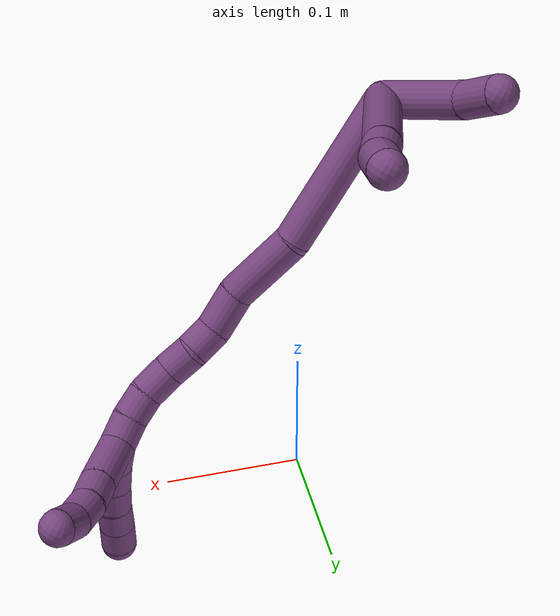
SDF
<sdf version="1.7">
 <world name="default">
  <model name="20">
   <static>0</static>
   <link name="20">
    <collision name="collision-cylinder-e_1_2_8">
     <pose>0.017701 0.04974 -0.00365 -1.64404 0.341042 -0.366427</pose>
     <geometry><cylinder><radius>0.0125</radius><length>0.105844</length></cylinder></geometry>
     <surface>
      <friction><ode><mu>1.16</mu><mu2>1.16</mu2><slip1>0</slip1><slip2>0</slip2></ode></friction>
      <contact><ode><kp>1e+06</kp><kd>1</kd><max_vel>0</max_vel><min_depth>0.001</min_depth></ode></contact>
     </surface>
    </collision>
    <visual name="visual-cylinder-e_1_2_8">
     <pose>0.017701 0.04974 -0.00365 -1.64404 0.341042 -0.366427</pose>
     <geometry><cylinder><radius>0.0125</radius><length>0.105844</length></cylinder></geometry>
     <material><ambient>0.478431 0.278431 0.509804 1</ambient></material>
    </visual>
    <collision name="collision-cylinder-e_2_8_9">
     <pose>0.039356 0.10909 -0.009031 -1.74909 0.384813 -0.457947</pose>
     <geometry><cylinder><radius>0.0125</radius><length>0.02107</length></cylinder></geometry>
     <surface>
      <friction><ode><mu>1.16</mu><mu2>1.16</mu2><slip1>0</slip1><slip2>0</slip2></ode></friction>
      <contact><ode><kp>1e+06</kp><kd>1</kd><max_vel>0</max_vel><min_depth>0.001</min_depth></ode></contact>
     </surface>
    </collision>
    <visual name="visual-cylinder-e_2_8_9">
     <pose>0.039356 0.10909 -0.009031 -1.74909 0.384813 -0.457947</pose>
     <geometry><cylinder><radius>0.0125</radius><length>0.02107</length></cylinder></geometry>
     <material><ambient>0.478431 0.278431 0.509804 1</ambient></material>
    </visual>
    <collision name="collision-cylinder-e_3_9_6">
     <pose>0.045056 0.130107 -0.010472 -1.54525 0.151763 -0.147948</pose>
     <geometry><cylinder><radius>0.0125</radius><length>0.023086</length></cylinder></geometry>
     <surface>
      <friction><ode><mu>1.16</mu><mu2>1.16</mu2><slip1>0</slip1><slip2>0</slip2></ode></friction>
      <contact><ode><kp>1e+06</kp><kd>1</kd><max_vel>0</max_vel><min_depth>0.001</min_depth></ode></contact>
     </surface>
    </collision>
    <visual name="visual-cylinder-e_3_9_6">
     <pose>0.045056 0.130107 -0.010472 -1.54525 0.151763 -0.147948</pose>
     <geometry><cylinder><radius>0.0125</radius><length>0.023086</length></cylinder></geometry>
     <material><ambient>0.478431 0.278431 0.509804 1</ambient></material>
    </visual>
    <collision name="collision-cylinder-e_1_2_10">
     <pose>-0.010613 0.029602 0.015761 -1.08154 -0.306485 0.184962</pose>
     <geometry><cylinder><radius>0.0125</radius><length>0.07035</length></cylinder></geometry>
     <surface>
      <friction><ode><mu>1.16</mu><mu2>1.16</mu2><slip1>0</slip1><slip2>0</slip2></ode></friction>
      <contact><ode><kp>1e+06</kp><kd>1</kd><max_vel>0</max_vel><min_depth>0.001</min_depth></ode></contact>
     </surface>
    </collision>
    <visual name="visual-cylinder-e_1_2_10">
     <pose>-0.010613 0.029602 0.015761 -1.08154 -0.306485 0.184962</pose>
     <geometry><cylinder><radius>0.0125</radius><length>0.07035</length></cylinder></geometry>
     <material><ambient>0.478431 0.278431 0.509804 1</ambient></material>
    </visual>
    <collision name="collision-cylinder-e_2_10_5">
     <pose>-0.023595 0.071524 0.039419 -1.0008 -0.160518 0.087907</pose>
     <geometry><cylinder><radius>0.0125</radius><length>0.02965</length></cylinder></geometry>
     <surface>
      <friction><ode><mu>1.16</mu><mu2>1.16</mu2><slip1>0</slip1><slip2>0</slip2></ode></friction>
      <contact><ode><kp>1e+06</kp><kd>1</kd><max_vel>0</max_vel><min_depth>0.001</min_depth></ode></contact>
     </surface>
    </collision>
    <visual name="visual-cylinder-e_2_10_5">
     <pose>-0.023595 0.071524 0.039419 -1.0008 -0.160518 0.087907</pose>
     <geometry><cylinder><radius>0.0125</radius><length>0.02965</length></cylinder></geometry>
     <material><ambient>0.478431 0.278431 0.509804 1</ambient></material>
    </visual>
    <collision name="collision-cylinder-e_1_2_11">
     <pose>0.005629 0.002459 -0.055139 -3.09703 0.101635 -2.31563</pose>
     <geometry><cylinder><radius>0.0125</radius><length>0.11096</length></cylinder></geometry>
     <surface>
      <friction><ode><mu>1.16</mu><mu2>1.16</mu2><slip1>0</slip1><slip2>0</slip2></ode></friction>
      <contact><ode><kp>1e+06</kp><kd>1</kd><max_vel>0</max_vel><min_depth>0.001</min_depth></ode></contact>
     </surface>
    </collision>
    <visual name="visual-cylinder-e_1_2_11">
     <pose>0.005629 0.002459 -0.055139 -3.09703 0.101635 -2.31563</pose>
     <geometry><cylinder><radius>0.0125</radius><length>0.11096</length></cylinder></geometry>
     <material><ambient>0.478431 0.278431 0.509804 1</ambient></material>
    </visual>
    <collision name="collision-cylinder-e_2_11_12">
     <pose>0.017507 -0.001346 -0.136104 2.90365 0.230963 1.54074</pose>
     <geometry><cylinder><radius>0.0125</radius><length>0.0546</length></cylinder></geometry>
     <surface>
      <friction><ode><mu>1.16</mu><mu2>1.16</mu2><slip1>0</slip1><slip2>0</slip2></ode></friction>
      <contact><ode><kp>1e+06</kp><kd>1</kd><max_vel>0</max_vel><min_depth>0.001</min_depth></ode></contact>
     </surface>
    </collision>
    <visual name="visual-cylinder-e_2_11_12">
     <pose>0.017507 -0.001346 -0.136104 2.90365 0.230963 1.54074</pose>
     <geometry><cylinder><radius>0.0125</radius><length>0.0546</length></cylinder></geometry>
     <material><ambient>0.478431 0.278431 0.509804 1</ambient></material>
    </visual>
    <collision name="collision-cylinder-e_3_12_13">
     <pose>0.025218 -0.006591 -0.176764 -3.07299 0.097926 -1.91981</pose>
     <geometry><cylinder><radius>0.0125</radius><length>0.02988</length></cylinder></geometry>
     <surface>
      <friction><ode><mu>1.16</mu><mu2>1.16</mu2><slip1>0</slip1><slip2>0</slip2></ode></friction>
      <contact><ode><kp>1e+06</kp><kd>1</kd><max_vel>0</max_vel><min_depth>0.001</min_depth></ode></contact>
     </surface>
    </collision>
    <visual name="visual-cylinder-e_3_12_13">
     <pose>0.025218 -0.006591 -0.176764 -3.07299 0.097926 -1.91981</pose>
     <geometry><cylinder><radius>0.0125</radius><length>0.02988</length></cylinder></geometry>
     <material><ambient>0.478431 0.278431 0.509804 1</ambient></material>
    </visual>
    <collision name="collision-cylinder-e_4_13_14">
     <pose>0.030785 -0.003736 -0.200889 -2.94657 0.409138 -2.2604</pose>
     <geometry><cylinder><radius>0.0125</radius><length>0.020647</length></cylinder></geometry>
     <surface>
      <friction><ode><mu>1.16</mu><mu2>1.16</mu2><slip1>0</slip1><slip2>0</slip2></ode></friction>
      <contact><ode><kp>1e+06</kp><kd>1</kd><max_vel>0</max_vel><min_depth>0.001</min_depth></ode></contact>
     </surface>
    </collision>
    <visual name="visual-cylinder-e_4_13_14">
     <pose>0.030785 -0.003736 -0.200889 -2.94657 0.409138 -2.2604</pose>
     <geometry><cylinder><radius>0.0125</radius><length>0.020647</length></cylinder></geometry>
     <material><ambient>0.478431 0.278431 0.509804 1</ambient></material>
    </visual>
    <collision name="collision-cylinder-e_5_14_15">
     <pose>0.038559 -0.002832 -0.219967 3.04668 0.357044 2.62689</pose>
     <geometry><cylinder><radius>0.0125</radius><length>0.020983</length></cylinder></geometry>
     <surface>
      <friction><ode><mu>1.16</mu><mu2>1.16</mu2><slip1>0</slip1><slip2>0</slip2></ode></friction>
      <contact><ode><kp>1e+06</kp><kd>1</kd><max_vel>0</max_vel><min_depth>0.001</min_depth></ode></contact>
     </surface>
    </collision>
    <visual name="visual-cylinder-e_5_14_15">
     <pose>0.038559 -0.002832 -0.219967 3.04668 0.357044 2.62689</pose>
     <geometry><cylinder><radius>0.0125</radius><length>0.020983</length></cylinder></geometry>
     <material><ambient>0.478431 0.278431 0.509804 1</ambient></material>
    </visual>
    <collision name="collision-cylinder-e_6_15_16">
     <pose>0.046578 -0.002414 -0.240075 -3.01154 0.396014 -2.51394</pose>
     <geometry><cylinder><radius>0.0125</radius><length>0.022568</length></cylinder></geometry>
     <surface>
      <friction><ode><mu>1.16</mu><mu2>1.16</mu2><slip1>0</slip1><slip2>0</slip2></ode></friction>
      <contact><ode><kp>1e+06</kp><kd>1</kd><max_vel>0</max_vel><min_depth>0.001</min_depth></ode></contact>
     </surface>
    </collision>
    <visual name="visual-cylinder-e_6_15_16">
     <pose>0.046578 -0.002414 -0.240075 -3.01154 0.396014 -2.51394</pose>
     <geometry><cylinder><radius>0.0125</radius><length>0.022568</length></cylinder></geometry>
     <material><ambient>0.478431 0.278431 0.509804 1</ambient></material>
    </visual>
    <collision name="collision-cylinder-e_7_16_17">
     <pose>0.053178 0.001849 -0.259711 -2.83851 0.226333 -1.27958</pose>
     <geometry><cylinder><radius>0.0125</radius><length>0.020026</length></cylinder></geometry>
     <surface>
      <friction><ode><mu>1.16</mu><mu2>1.16</mu2><slip1>0</slip1><slip2>0</slip2></ode></friction>
      <contact><ode><kp>1e+06</kp><kd>1</kd><max_vel>0</max_vel><min_depth>0.001</min_depth></ode></contact>
     </surface>
    </collision>
    <visual name="visual-cylinder-e_7_16_17">
     <pose>0.053178 0.001849 -0.259711 -2.83851 0.226333 -1.27958</pose>
     <geometry><cylinder><radius>0.0125</radius><length>0.020026</length></cylinder></geometry>
     <material><ambient>0.478431 0.278431 0.509804 1</ambient></material>
    </visual>
    <collision name="collision-cylinder-e_8_17_1">
     <pose>0.056641 0.008744 -0.2783 -2.73599 0.119878 -0.567908</pose>
     <geometry><cylinder><radius>0.0125</radius><length>0.020336</length></cylinder></geometry>
     <surface>
      <friction><ode><mu>1.16</mu><mu2>1.16</mu2><slip1>0</slip1><slip2>0</slip2></ode></friction>
      <contact><ode><kp>1e+06</kp><kd>1</kd><max_vel>0</max_vel><min_depth>0.001</min_depth></ode></contact>
     </surface>
    </collision>
    <visual name="visual-cylinder-e_8_17_1">
     <pose>0.056641 0.008744 -0.2783 -2.73599 0.119878 -0.567908</pose>
     <geometry><cylinder><radius>0.0125</radius><length>0.020336</length></cylinder></geometry>
     <material><ambient>0.478431 0.278431 0.509804 1</ambient></material>
    </visual>
    <collision name="collision-cylinder-e_1_1_18">
     <pose>0.065205 0.02924 -0.295154 -2.00107 0.384317 -0.58908</pose>
     <geometry><cylinder><radius>0.0125</radius><length>0.039196</length></cylinder></geometry>
     <surface>
      <friction><ode><mu>1.16</mu><mu2>1.16</mu2><slip1>0</slip1><slip2>0</slip2></ode></friction>
      <contact><ode><kp>1e+06</kp><kd>1</kd><max_vel>0</max_vel><min_depth>0.001</min_depth></ode></contact>
     </surface>
    </collision>
    <visual name="visual-cylinder-e_1_1_18">
     <pose>0.065205 0.02924 -0.295154 -2.00107 0.384317 -0.58908</pose>
     <geometry><cylinder><radius>0.0125</radius><length>0.039196</length></cylinder></geometry>
     <material><ambient>0.478431 0.278431 0.509804 1</ambient></material>
    </visual>
    <collision name="collision-cylinder-e_2_18_19">
     <pose>0.076158 0.054814 -0.306237 -1.93985 0.355301 -0.512383</pose>
     <geometry><cylinder><radius>0.0125</radius><length>0.020726</length></cylinder></geometry>
     <surface>
      <friction><ode><mu>1.16</mu><mu2>1.16</mu2><slip1>0</slip1><slip2>0</slip2></ode></friction>
      <contact><ode><kp>1e+06</kp><kd>1</kd><max_vel>0</max_vel><min_depth>0.001</min_depth></ode></contact>
     </surface>
    </collision>
    <visual name="visual-cylinder-e_2_18_19">
     <pose>0.076158 0.054814 -0.306237 -1.93985 0.355301 -0.512383</pose>
     <geometry><cylinder><radius>0.0125</radius><length>0.020726</length></cylinder></geometry>
     <material><ambient>0.478431 0.278431 0.509804 1</ambient></material>
    </visual>
    <collision name="collision-cylinder-e_3_19_20">
     <pose>0.084918 0.071918 -0.312816 -1.9359 0.539536 -0.763966</pose>
     <geometry><cylinder><radius>0.0125</radius><length>0.020071</length></cylinder></geometry>
     <surface>
      <friction><ode><mu>1.16</mu><mu2>1.16</mu2><slip1>0</slip1><slip2>0</slip2></ode></friction>
      <contact><ode><kp>1e+06</kp><kd>1</kd><max_vel>0</max_vel><min_depth>0.001</min_depth></ode></contact>
     </surface>
    </collision>
    <visual name="visual-cylinder-e_3_19_20">
     <pose>0.084918 0.071918 -0.312816 -1.9359 0.539536 -0.763966</pose>
     <geometry><cylinder><radius>0.0125</radius><length>0.020071</length></cylinder></geometry>
     <material><ambient>0.478431 0.278431 0.509804 1</ambient></material>
    </visual>
    <collision name="collision-cylinder-e_4_20_4">
     <pose>0.096991 0.087182 -0.316155 -1.60751 0.763517 -0.789243</pose>
     <geometry><cylinder><radius>0.0125</radius><length>0.020007</length></cylinder></geometry>
     <surface>
      <friction><ode><mu>1.16</mu><mu2>1.16</mu2><slip1>0</slip1><slip2>0</slip2></ode></friction>
      <contact><ode><kp>1e+06</kp><kd>1</kd><max_vel>0</max_vel><min_depth>0.001</min_depth></ode></contact>
     </surface>
    </collision>
    <visual name="visual-cylinder-e_4_20_4">
     <pose>0.096991 0.087182 -0.316155 -1.60751 0.763517 -0.789243</pose>
     <geometry><cylinder><radius>0.0125</radius><length>0.020007</length></cylinder></geometry>
     <material><ambient>0.478431 0.278431 0.509804 1</ambient></material>
    </visual>
    <collision name="collision-cylinder-e_1_1_21">
     <pose>0.05417 0.009695 -0.296362 2.80926 -0.377655 -1.701</pose>
     <geometry><cylinder><radius>0.0125</radius><length>0.02</length></cylinder></geometry>
     <surface>
      <friction><ode><mu>1.16</mu><mu2>1.16</mu2><slip1>0</slip1><slip2>0</slip2></ode></friction>
      <contact><ode><kp>1e+06</kp><kd>1</kd><max_vel>0</max_vel><min_depth>0.001</min_depth></ode></contact>
     </surface>
    </collision>
    <visual name="visual-cylinder-e_1_1_21">
     <pose>0.05417 0.009695 -0.296362 2.80926 -0.377655 -1.701</pose>
     <geometry><cylinder><radius>0.0125</radius><length>0.02</length></cylinder></geometry>
     <material><ambient>0.478431 0.278431 0.509804 1</ambient></material>
    </visual>
    <collision name="collision-cylinder-e_2_21_22">
     <pose>0.046056 0.004297 -0.313798 2.8746 -0.458568 -2.0973</pose>
     <geometry><cylinder><radius>0.0125</radius><length>0.02</length></cylinder></geometry>
     <surface>
      <friction><ode><mu>1.16</mu><mu2>1.16</mu2><slip1>0</slip1><slip2>0</slip2></ode></friction>
      <contact><ode><kp>1e+06</kp><kd>1</kd><max_vel>0</max_vel><min_depth>0.001</min_depth></ode></contact>
     </surface>
    </collision>
    <visual name="visual-cylinder-e_2_21_22">
     <pose>0.046056 0.004297 -0.313798 2.8746 -0.458568 -2.0973</pose>
     <geometry><cylinder><radius>0.0125</radius><length>0.02</length></cylinder></geometry>
     <material><ambient>0.478431 0.278431 0.509804 1</ambient></material>
    </visual>
    <collision name="collision-cylinder-e_3_22_23">
     <pose>0.036829 -5e-06 -0.331004 2.91909 -0.500627 -2.31773</pose>
     <geometry><cylinder><radius>0.0125</radius><length>0.02</length></cylinder></geometry>
     <surface>
      <friction><ode><mu>1.16</mu><mu2>1.16</mu2><slip1>0</slip1><slip2>0</slip2></ode></friction>
      <contact><ode><kp>1e+06</kp><kd>1</kd><max_vel>0</max_vel><min_depth>0.001</min_depth></ode></contact>
     </surface>
    </collision>
    <visual name="visual-cylinder-e_3_22_23">
     <pose>0.036829 -5e-06 -0.331004 2.91909 -0.500627 -2.31773</pose>
     <geometry><cylinder><radius>0.0125</radius><length>0.02</length></cylinder></geometry>
     <material><ambient>0.478431 0.278431 0.509804 1</ambient></material>
    </visual>
    <collision name="collision-cylinder-e_4_23_24">
     <pose>0.026455 -0.004359 -0.347502 2.84607 -0.591335 -2.2325</pose>
     <geometry><cylinder><radius>0.0125</radius><length>0.02</length></cylinder></geometry>
     <surface>
      <friction><ode><mu>1.16</mu><mu2>1.16</mu2><slip1>0</slip1><slip2>0</slip2></ode></friction>
      <contact><ode><kp>1e+06</kp><kd>1</kd><max_vel>0</max_vel><min_depth>0.001</min_depth></ode></contact>
     </surface>
    </collision>
    <visual name="visual-cylinder-e_4_23_24">
     <pose>0.026455 -0.004359 -0.347502 2.84607 -0.591335 -2.2325</pose>
     <geometry><cylinder><radius>0.0125</radius><length>0.02</length></cylinder></geometry>
     <material><ambient>0.478431 0.278431 0.509804 1</ambient></material>
    </visual>
    <collision name="collision-cylinder-e_5_24_3">
     <pose>0.015526 -0.009019 -0.363588 2.87295 -0.564992 -2.27014</pose>
     <geometry><cylinder><radius>0.0125</radius><length>0.02</length></cylinder></geometry>
     <surface>
      <friction><ode><mu>1.16</mu><mu2>1.16</mu2><slip1>0</slip1><slip2>0</slip2></ode></friction>
      <contact><ode><kp>1e+06</kp><kd>1</kd><max_vel>0</max_vel><min_depth>0.001</min_depth></ode></contact>
     </surface>
    </collision>
    <visual name="visual-cylinder-e_5_24_3">
     <pose>0.015526 -0.009019 -0.363588 2.87295 -0.564992 -2.27014</pose>
     <geometry><cylinder><radius>0.0125</radius><length>0.02</length></cylinder></geometry>
     <material><ambient>0.478431 0.278431 0.509804 1</ambient></material>
    </visual>
    <collision name="collision-sphere-3">
     <pose>0.010172 -0.01126 -0.37173 0 -0 0</pose>
     <geometry><sphere><radius>0.0125</radius></sphere></geometry>
     <surface>
      <friction><ode><mu>1.16</mu><mu2>1.16</mu2><slip1>0</slip1><slip2>0</slip2></ode></friction>
      <contact><ode><kp>1e+06</kp><kd>1</kd><max_vel>0</max_vel><min_depth>0.001</min_depth></ode></contact>
     </surface>
    </collision>
    <visual name="visual-sphere-3">
     <pose>0.010172 -0.01126 -0.37173 0 -0 0</pose>
     <geometry><sphere><radius>0.0125</radius></sphere></geometry>
     <material><ambient>0.478431 0.278431 0.509804 1</ambient></material>
    </visual>
    <collision name="collision-sphere-24">
     <pose>0.02088 -0.006777 -0.355445 0 -0 0</pose>
     <geometry><sphere><radius>0.0125</radius></sphere></geometry>
     <surface>
      <friction><ode><mu>1.16</mu><mu2>1.16</mu2><slip1>0</slip1><slip2>0</slip2></ode></friction>
      <contact><ode><kp>1e+06</kp><kd>1</kd><max_vel>0</max_vel><min_depth>0.001</min_depth></ode></contact>
     </surface>
    </collision>
    <visual name="visual-sphere-24">
     <pose>0.02088 -0.006777 -0.355445 0 -0 0</pose>
     <geometry><sphere><radius>0.0125</radius></sphere></geometry>
     <material><ambient>0.478431 0.278431 0.509804 1</ambient></material>
    </visual>
    <collision name="collision-sphere-23">
     <pose>0.032029 -0.001941 -0.33956 0 -0 0</pose>
     <geometry><sphere><radius>0.0125</radius></sphere></geometry>
     <surface>
      <friction><ode><mu>1.16</mu><mu2>1.16</mu2><slip1>0</slip1><slip2>0</slip2></ode></friction>
      <contact><ode><kp>1e+06</kp><kd>1</kd><max_vel>0</max_vel><min_depth>0.001</min_depth></ode></contact>
     </surface>
    </collision>
    <visual name="visual-sphere-23">
     <pose>0.032029 -0.001941 -0.33956 0 -0 0</pose>
     <geometry><sphere><radius>0.0125</radius></sphere></geometry>
     <material><ambient>0.478431 0.278431 0.509804 1</ambient></material>
    </visual>
    <collision name="collision-sphere-22">
     <pose>0.041629 0.001931 -0.322447 0 -0 0</pose>
     <geometry><sphere><radius>0.0125</radius></sphere></geometry>
     <surface>
      <friction><ode><mu>1.16</mu><mu2>1.16</mu2><slip1>0</slip1><slip2>0</slip2></ode></friction>
      <contact><ode><kp>1e+06</kp><kd>1</kd><max_vel>0</max_vel><min_depth>0.001</min_depth></ode></contact>
     </surface>
    </collision>
    <visual name="visual-sphere-22">
     <pose>0.041629 0.001931 -0.322447 0 -0 0</pose>
     <geometry><sphere><radius>0.0125</radius></sphere></geometry>
     <material><ambient>0.478431 0.278431 0.509804 1</ambient></material>
    </visual>
    <collision name="collision-sphere-21">
     <pose>0.050482 0.006662 -0.305149 0 -0 0</pose>
     <geometry><sphere><radius>0.0125</radius></sphere></geometry>
     <surface>
      <friction><ode><mu>1.16</mu><mu2>1.16</mu2><slip1>0</slip1><slip2>0</slip2></ode></friction>
      <contact><ode><kp>1e+06</kp><kd>1</kd><max_vel>0</max_vel><min_depth>0.001</min_depth></ode></contact>
     </surface>
    </collision>
    <visual name="visual-sphere-21">
     <pose>0.050482 0.006662 -0.305149 0 -0 0</pose>
     <geometry><sphere><radius>0.0125</radius></sphere></geometry>
     <material><ambient>0.478431 0.278431 0.509804 1</ambient></material>
    </visual>
    <collision name="collision-sphere-4">
     <pose>0.103908 0.094404 -0.316421 0 -0 0</pose>
     <geometry><sphere><radius>0.0125</radius></sphere></geometry>
     <surface>
      <friction><ode><mu>1.16</mu><mu2>1.16</mu2><slip1>0</slip1><slip2>0</slip2></ode></friction>
      <contact><ode><kp>1e+06</kp><kd>1</kd><max_vel>0</max_vel><min_depth>0.001</min_depth></ode></contact>
     </surface>
    </collision>
    <visual name="visual-sphere-4">
     <pose>0.103908 0.094404 -0.316421 0 -0 0</pose>
     <geometry><sphere><radius>0.0125</radius></sphere></geometry>
     <material><ambient>0.478431 0.278431 0.509804 1</ambient></material>
    </visual>
    <collision name="collision-sphere-20">
     <pose>0.090074 0.07996 -0.31589 0 -0 0</pose>
     <geometry><sphere><radius>0.0125</radius></sphere></geometry>
     <surface>
      <friction><ode><mu>1.16</mu><mu2>1.16</mu2><slip1>0</slip1><slip2>0</slip2></ode></friction>
      <contact><ode><kp>1e+06</kp><kd>1</kd><max_vel>0</max_vel><min_depth>0.001</min_depth></ode></contact>
     </surface>
    </collision>
    <visual name="visual-sphere-20">
     <pose>0.090074 0.07996 -0.31589 0 -0 0</pose>
     <geometry><sphere><radius>0.0125</radius></sphere></geometry>
     <material><ambient>0.478431 0.278431 0.509804 1</ambient></material>
    </visual>
    <collision name="collision-sphere-5">
     <pose>-0.025964 0.083844 0.047316 0 -0 0</pose>
     <geometry><sphere><radius>0.0125</radius></sphere></geometry>
     <surface>
      <friction><ode><mu>1.16</mu><mu2>1.16</mu2><slip1>0</slip1><slip2>0</slip2></ode></friction>
      <contact><ode><kp>1e+06</kp><kd>1</kd><max_vel>0</max_vel><min_depth>0.001</min_depth></ode></contact>
     </surface>
    </collision>
    <visual name="visual-sphere-5">
     <pose>-0.025964 0.083844 0.047316 0 -0 0</pose>
     <geometry><sphere><radius>0.0125</radius></sphere></geometry>
     <material><ambient>0.478431 0.278431 0.509804 1</ambient></material>
    </visual>
    <collision name="collision-sphere-10">
     <pose>-0.021225 0.059203 0.031522 0 -0 0</pose>
     <geometry><sphere><radius>0.0125</radius></sphere></geometry>
     <surface>
      <friction><ode><mu>1.16</mu><mu2>1.16</mu2><slip1>0</slip1><slip2>0</slip2></ode></friction>
      <contact><ode><kp>1e+06</kp><kd>1</kd><max_vel>0</max_vel><min_depth>0.001</min_depth></ode></contact>
     </surface>
    </collision>
    <visual name="visual-sphere-10">
     <pose>-0.021225 0.059203 0.031522 0 -0 0</pose>
     <geometry><sphere><radius>0.0125</radius></sphere></geometry>
     <material><ambient>0.478431 0.278431 0.509804 1</ambient></material>
    </visual>
    <collision name="collision-sphere-6">
     <pose>0.046801 0.141513 -0.01018 0 -0 0</pose>
     <geometry><sphere><radius>0.0125</radius></sphere></geometry>
     <surface>
      <friction><ode><mu>1.16</mu><mu2>1.16</mu2><slip1>0</slip1><slip2>0</slip2></ode></friction>
      <contact><ode><kp>1e+06</kp><kd>1</kd><max_vel>0</max_vel><min_depth>0.001</min_depth></ode></contact>
     </surface>
    </collision>
    <visual name="visual-sphere-6">
     <pose>0.046801 0.141513 -0.01018 0 -0 0</pose>
     <geometry><sphere><radius>0.0125</radius></sphere></geometry>
     <material><ambient>0.478431 0.278431 0.509804 1</ambient></material>
    </visual>
    <collision name="collision-sphere-9">
     <pose>0.043311 0.1187 -0.010763 0 -0 0</pose>
     <geometry><sphere><radius>0.0125</radius></sphere></geometry>
     <surface>
      <friction><ode><mu>1.16</mu><mu2>1.16</mu2><slip1>0</slip1><slip2>0</slip2></ode></friction>
      <contact><ode><kp>1e+06</kp><kd>1</kd><max_vel>0</max_vel><min_depth>0.001</min_depth></ode></contact>
     </surface>
    </collision>
    <visual name="visual-sphere-9">
     <pose>0.043311 0.1187 -0.010763 0 -0 0</pose>
     <geometry><sphere><radius>0.0125</radius></sphere></geometry>
     <material><ambient>0.478431 0.278431 0.509804 1</ambient></material>
    </visual>
    <collision name="collision-sphere-2">
     <geometry><sphere><radius>0.0125</radius></sphere></geometry>
     <surface>
      <friction><ode><mu>1.16</mu><mu2>1.16</mu2><slip1>0</slip1><slip2>0</slip2></ode></friction>
      <contact><ode><kp>1e+06</kp><kd>1</kd><max_vel>0</max_vel><min_depth>0.001</min_depth></ode></contact>
     </surface>
    </collision>
    <visual name="visual-sphere-2">
     <geometry><sphere><radius>0.0125</radius></sphere></geometry>
     <material><ambient>0.478431 0.278431 0.509804 1</ambient></material>
    </visual>
    <collision name="collision-sphere-19">
     <pose>0.079763 0.063876 -0.309742 0 -0 0</pose>
     <geometry><sphere><radius>0.0125</radius></sphere></geometry>
     <surface>
      <friction><ode><mu>1.16</mu><mu2>1.16</mu2><slip1>0</slip1><slip2>0</slip2></ode></friction>
      <contact><ode><kp>1e+06</kp><kd>1</kd><max_vel>0</max_vel><min_depth>0.001</min_depth></ode></contact>
     </surface>
    </collision>
    <visual name="visual-sphere-19">
     <pose>0.079763 0.063876 -0.309742 0 -0 0</pose>
     <geometry><sphere><radius>0.0125</radius></sphere></geometry>
     <material><ambient>0.478431 0.278431 0.509804 1</ambient></material>
    </visual>
    <collision name="collision-sphere-8">
     <pose>0.035401 0.09948 -0.0073 0 -0 0</pose>
     <geometry><sphere><radius>0.0125</radius></sphere></geometry>
     <surface>
      <friction><ode><mu>1.16</mu><mu2>1.16</mu2><slip1>0</slip1><slip2>0</slip2></ode></friction>
      <contact><ode><kp>1e+06</kp><kd>1</kd><max_vel>0</max_vel><min_depth>0.001</min_depth></ode></contact>
     </surface>
    </collision>
    <visual name="visual-sphere-8">
     <pose>0.035401 0.09948 -0.0073 0 -0 0</pose>
     <geometry><sphere><radius>0.0125</radius></sphere></geometry>
     <material><ambient>0.478431 0.278431 0.509804 1</ambient></material>
    </visual>
    <collision name="collision-sphere-11">
     <pose>0.011258 0.004918 -0.110278 0 -0 0</pose>
     <geometry><sphere><radius>0.0125</radius></sphere></geometry>
     <surface>
      <friction><ode><mu>1.16</mu><mu2>1.16</mu2><slip1>0</slip1><slip2>0</slip2></ode></friction>
      <contact><ode><kp>1e+06</kp><kd>1</kd><max_vel>0</max_vel><min_depth>0.001</min_depth></ode></contact>
     </surface>
    </collision>
    <visual name="visual-sphere-11">
     <pose>0.011258 0.004918 -0.110278 0 -0 0</pose>
     <geometry><sphere><radius>0.0125</radius></sphere></geometry>
     <material><ambient>0.478431 0.278431 0.509804 1</ambient></material>
    </visual>
    <collision name="collision-sphere-12">
     <pose>0.023757 -0.00761 -0.161931 0 -0 0</pose>
     <geometry><sphere><radius>0.0125</radius></sphere></geometry>
     <surface>
      <friction><ode><mu>1.16</mu><mu2>1.16</mu2><slip1>0</slip1><slip2>0</slip2></ode></friction>
      <contact><ode><kp>1e+06</kp><kd>1</kd><max_vel>0</max_vel><min_depth>0.001</min_depth></ode></contact>
     </surface>
    </collision>
    <visual name="visual-sphere-12">
     <pose>0.023757 -0.00761 -0.161931 0 -0 0</pose>
     <geometry><sphere><radius>0.0125</radius></sphere></geometry>
     <material><ambient>0.478431 0.278431 0.509804 1</ambient></material>
    </visual>
    <collision name="collision-sphere-13">
     <pose>0.026678 -0.005572 -0.191598 0 -0 0</pose>
     <geometry><sphere><radius>0.0125</radius></sphere></geometry>
     <surface>
      <friction><ode><mu>1.16</mu><mu2>1.16</mu2><slip1>0</slip1><slip2>0</slip2></ode></friction>
      <contact><ode><kp>1e+06</kp><kd>1</kd><max_vel>0</max_vel><min_depth>0.001</min_depth></ode></contact>
     </surface>
    </collision>
    <visual name="visual-sphere-13">
     <pose>0.026678 -0.005572 -0.191598 0 -0 0</pose>
     <geometry><sphere><radius>0.0125</radius></sphere></geometry>
     <material><ambient>0.478431 0.278431 0.509804 1</ambient></material>
    </visual>
    <collision name="collision-sphere-14">
     <pose>0.034892 -0.001901 -0.210181 0 -0 0</pose>
     <geometry><sphere><radius>0.0125</radius></sphere></geometry>
     <surface>
      <friction><ode><mu>1.16</mu><mu2>1.16</mu2><slip1>0</slip1><slip2>0</slip2></ode></friction>
      <contact><ode><kp>1e+06</kp><kd>1</kd><max_vel>0</max_vel><min_depth>0.001</min_depth></ode></contact>
     </surface>
    </collision>
    <visual name="visual-sphere-14">
     <pose>0.034892 -0.001901 -0.210181 0 -0 0</pose>
     <geometry><sphere><radius>0.0125</radius></sphere></geometry>
     <material><ambient>0.478431 0.278431 0.509804 1</ambient></material>
    </visual>
    <collision name="collision-sphere-15">
     <pose>0.042226 -0.003764 -0.229752 0 -0 0</pose>
     <geometry><sphere><radius>0.0125</radius></sphere></geometry>
     <surface>
      <friction><ode><mu>1.16</mu><mu2>1.16</mu2><slip1>0</slip1><slip2>0</slip2></ode></friction>
      <contact><ode><kp>1e+06</kp><kd>1</kd><max_vel>0</max_vel><min_depth>0.001</min_depth></ode></contact>
     </surface>
    </collision>
    <visual name="visual-sphere-15">
     <pose>0.042226 -0.003764 -0.229752 0 -0 0</pose>
     <geometry><sphere><radius>0.0125</radius></sphere></geometry>
     <material><ambient>0.478431 0.278431 0.509804 1</ambient></material>
    </visual>
    <collision name="collision-sphere-16">
     <pose>0.050931 -0.001064 -0.250398 0 -0 0</pose>
     <geometry><sphere><radius>0.0125</radius></sphere></geometry>
     <surface>
      <friction><ode><mu>1.16</mu><mu2>1.16</mu2><slip1>0</slip1><slip2>0</slip2></ode></friction>
      <contact><ode><kp>1e+06</kp><kd>1</kd><max_vel>0</max_vel><min_depth>0.001</min_depth></ode></contact>
     </surface>
    </collision>
    <visual name="visual-sphere-16">
     <pose>0.050931 -0.001064 -0.250398 0 -0 0</pose>
     <geometry><sphere><radius>0.0125</radius></sphere></geometry>
     <material><ambient>0.478431 0.278431 0.509804 1</ambient></material>
    </visual>
    <collision name="collision-sphere-17">
     <pose>0.055425 0.004761 -0.269024 0 -0 0</pose>
     <geometry><sphere><radius>0.0125</radius></sphere></geometry>
     <surface>
      <friction><ode><mu>1.16</mu><mu2>1.16</mu2><slip1>0</slip1><slip2>0</slip2></ode></friction>
      <contact><ode><kp>1e+06</kp><kd>1</kd><max_vel>0</max_vel><min_depth>0.001</min_depth></ode></contact>
     </surface>
    </collision>
    <visual name="visual-sphere-17">
     <pose>0.055425 0.004761 -0.269024 0 -0 0</pose>
     <geometry><sphere><radius>0.0125</radius></sphere></geometry>
     <material><ambient>0.478431 0.278431 0.509804 1</ambient></material>
    </visual>
    <collision name="collision-sphere-1">
     <pose>0.057857 0.012727 -0.287576 0 -0 0</pose>
     <geometry><sphere><radius>0.0125</radius></sphere></geometry>
     <surface>
      <friction><ode><mu>1.16</mu><mu2>1.16</mu2><slip1>0</slip1><slip2>0</slip2></ode></friction>
      <contact><ode><kp>1e+06</kp><kd>1</kd><max_vel>0</max_vel><min_depth>0.001</min_depth></ode></contact>
     </surface>
    </collision>
    <visual name="visual-sphere-1">
     <pose>0.057857 0.012727 -0.287576 0 -0 0</pose>
     <geometry><sphere><radius>0.0125</radius></sphere></geometry>
     <material><ambient>0.478431 0.278431 0.509804 1</ambient></material>
    </visual>
    <collision name="collision-sphere-18">
     <pose>0.072553 0.045752 -0.302732 0 -0 0</pose>
     <geometry><sphere><radius>0.0125</radius></sphere></geometry>
     <surface>
      <friction><ode><mu>1.16</mu><mu2>1.16</mu2><slip1>0</slip1><slip2>0</slip2></ode></friction>
      <contact><ode><kp>1e+06</kp><kd>1</kd><max_vel>0</max_vel><min_depth>0.001</min_depth></ode></contact>
     </surface>
    </collision>
    <visual name="visual-sphere-18">
     <pose>0.072553 0.045752 -0.302732 0 -0 0</pose>
     <geometry><sphere><radius>0.0125</radius></sphere></geometry>
     <material><ambient>0.478431 0.278431 0.509804 1</ambient></material>
    </visual>
    <inertial>
     <pose>0.027604 0.027038 -0.141305 0 -0 0</pose>
     <mass>0.75</mass>
     <inertia>
      <ixx>-6.3e-05</ixx>
      <ixy>0</ixy>
      <ixz>0</ixz>
      <iyy>1.6e-05</iyy>
      <iyz>0</iyz>
      <izz>-0.000213</izz>
     </inertia>
    </inertial>
   </link>
   <pose>-0.054451 0.003108 0.317098 0.235419 -0.540575 -0.087628</pose>
  </model>
 </world>
</sdf>
